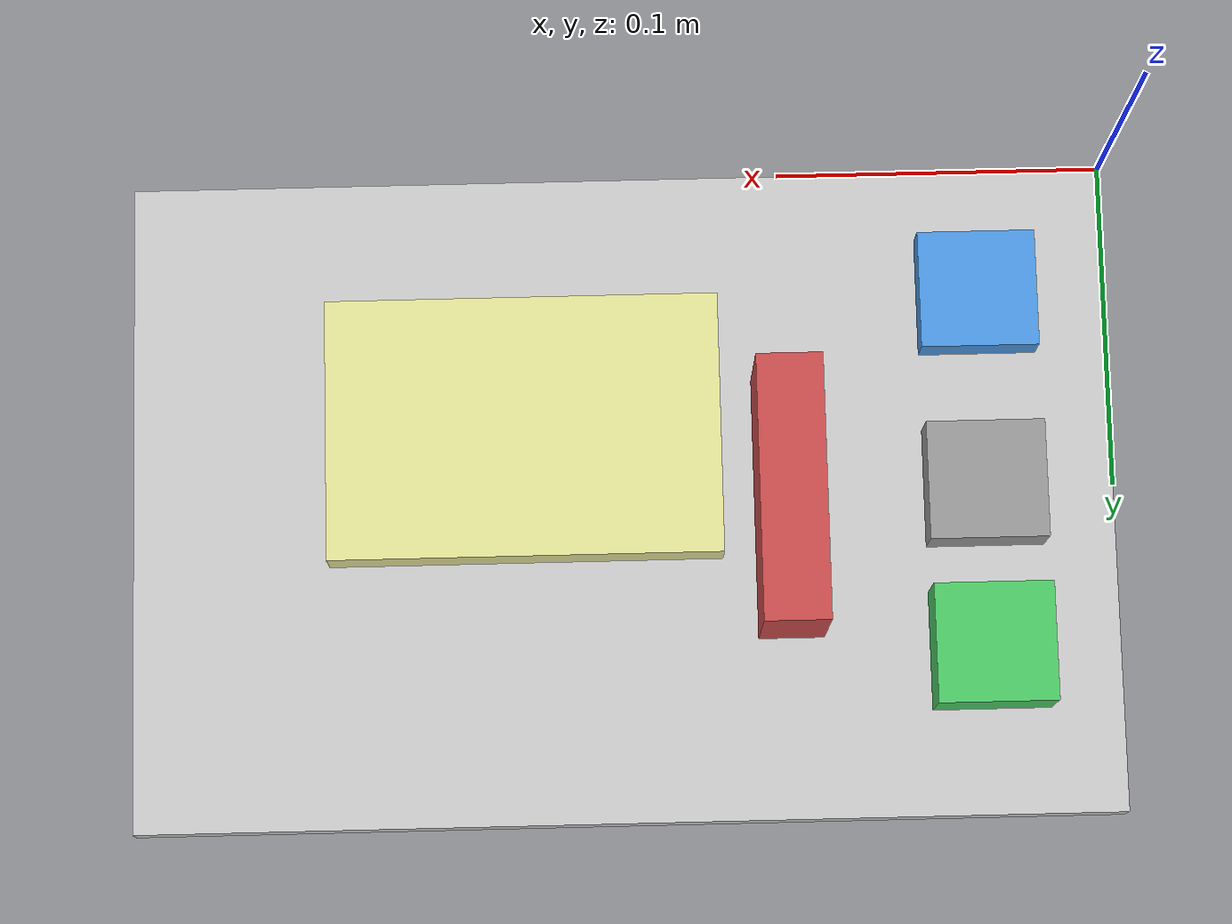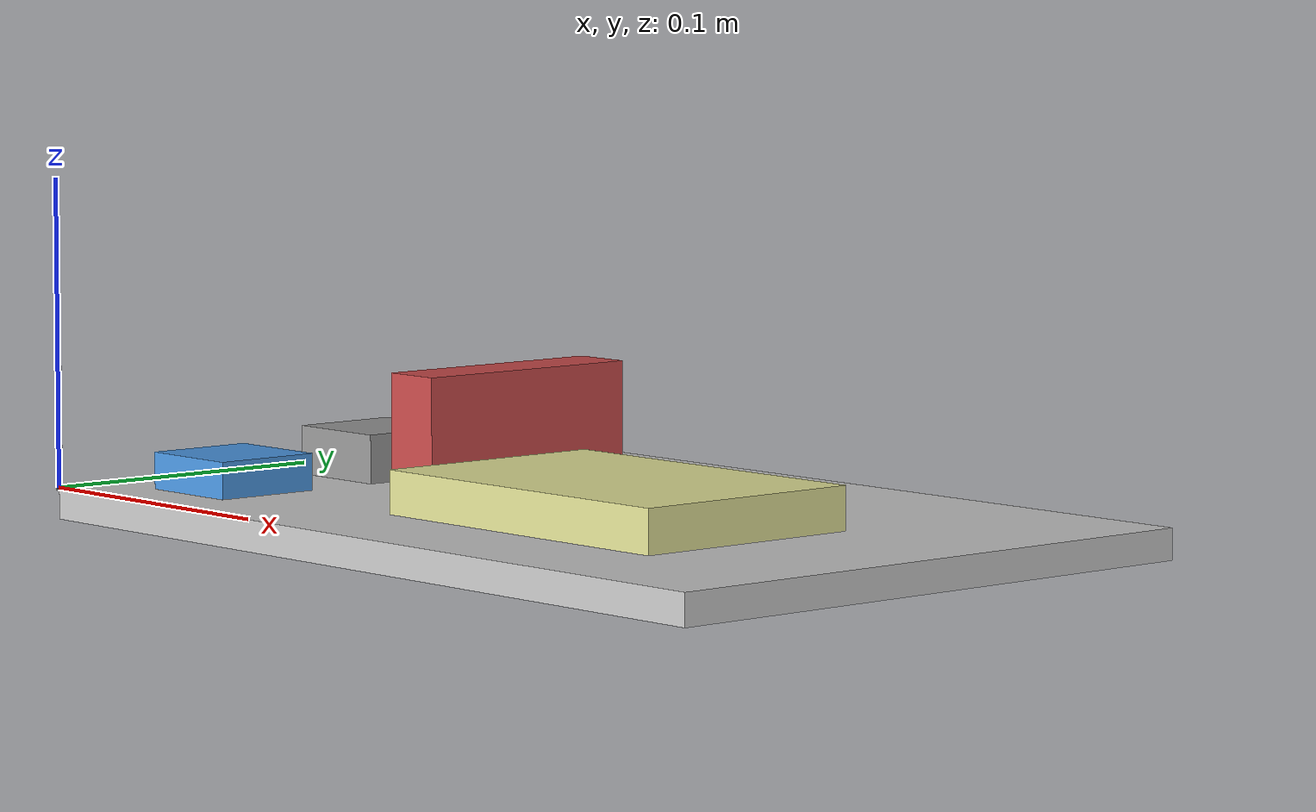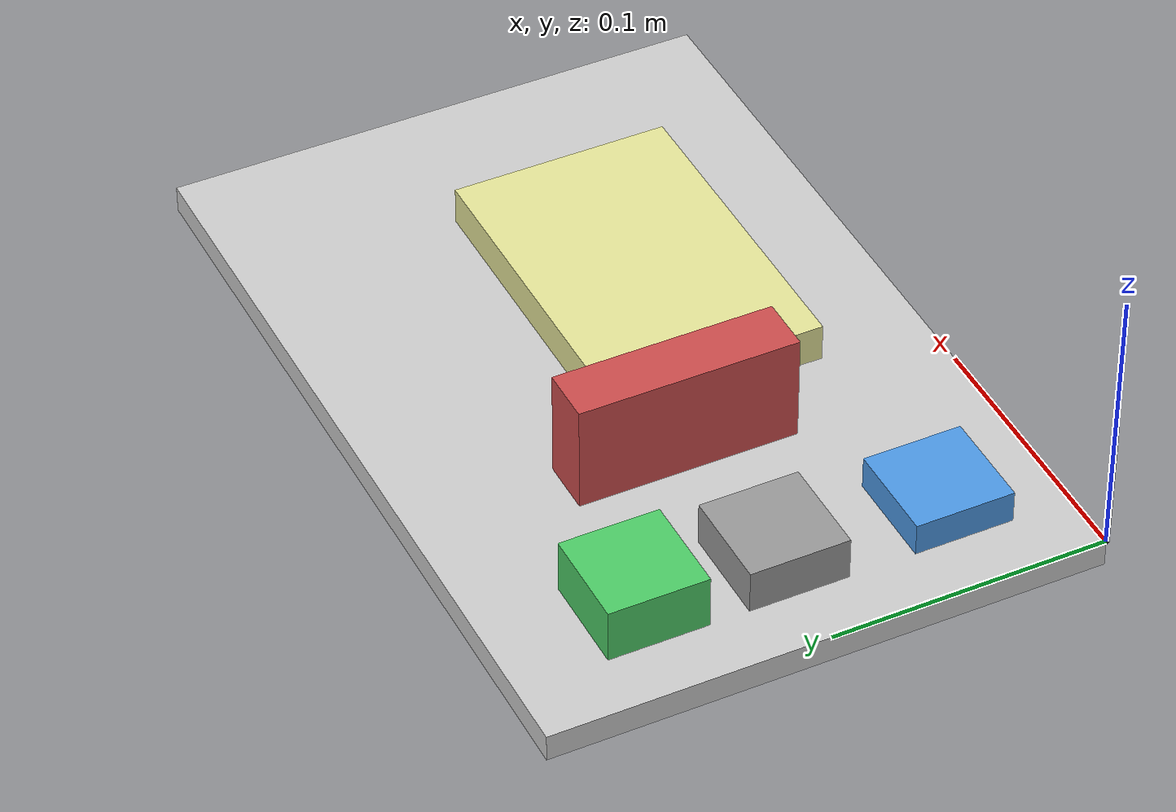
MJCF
<!-- Generic gantry workcell. NOT a model of any real robot. Units: metres. Kinematic checks only. -->
<mujoco model="generic_workcell_v0">
  <option gravity="0 0 0"/>
  <worldbody>
    <light pos="0.15 0.1 0.5" dir="0 0 -1"/>
    <geom name="deck" type="box" pos="0.15 0.1 -0.005" size="0.15 0.1 0.005" contype="0" conaffinity="0" rgba="0.8 0.8 0.8 1"/>
    <!-- visual-only labware: modeled approach regions, no contact -->
    <geom name="tiprack"  type="box" pos="0.04 0.04 0.006" size="0.018 0.018 0.006" contype="0" conaffinity="0" rgba="0.3 0.6 0.9 1"/>
    <geom name="source"   type="box" pos="0.04 0.15 0.01"  size="0.018 0.018 0.01"  contype="0" conaffinity="0" rgba="0.3 0.8 0.4 1"/>
    <geom name="waste"    type="box" pos="0.04 0.10 0.008" size="0.018 0.018 0.008" contype="0" conaffinity="0" rgba="0.6 0.6 0.6 1"/>
    <geom name="plate"    type="box" pos="0.18 0.08 0.007" size="0.06 0.04 0.007"   contype="0" conaffinity="0" rgba="0.9 0.9 0.6 1"/>
    <!-- colliding fixture (e.g. a reagent tower) between source and plate -->
    <geom name="tower" type="box" pos="0.10 0.105 0.02" size="0.01 0.04 0.02" contype="1" conaffinity="1" rgba="0.8 0.3 0.3 1"/>
    <body name="carriage" pos="0 0 0">
      <joint name="x" type="slide" axis="1 0 0" range="0 0.3"/>
      <joint name="y" type="slide" axis="0 1 0" range="0 0.2"/>
      <joint name="z" type="slide" axis="0 0 1" range="0 0.1"/>
      <!-- tip at body origin; barrel extends upward -->
      <geom name="pipette" type="capsule" fromto="0 0 0.0 0 0 0.05" size="0.001" contype="1" conaffinity="1" mass="0.01" rgba="0.1 0.1 0.1 1"/>
    </body>
  </worldbody>
</mujoco>
